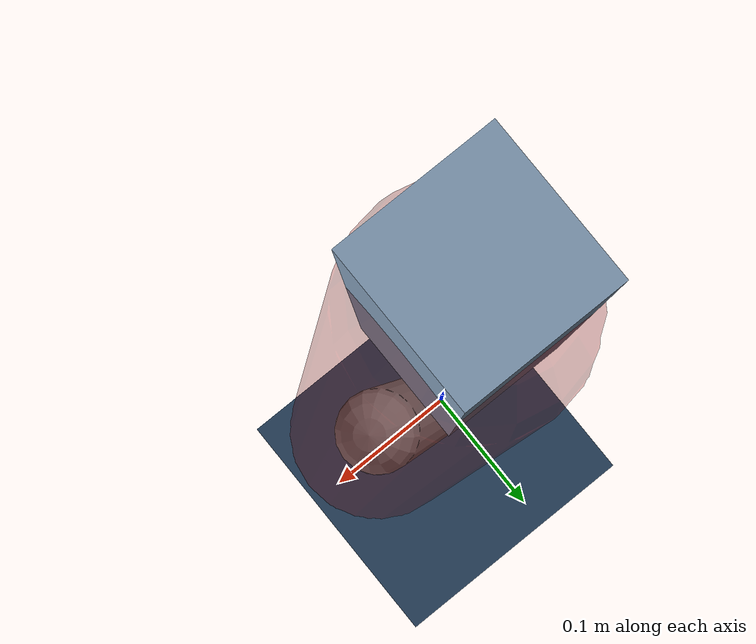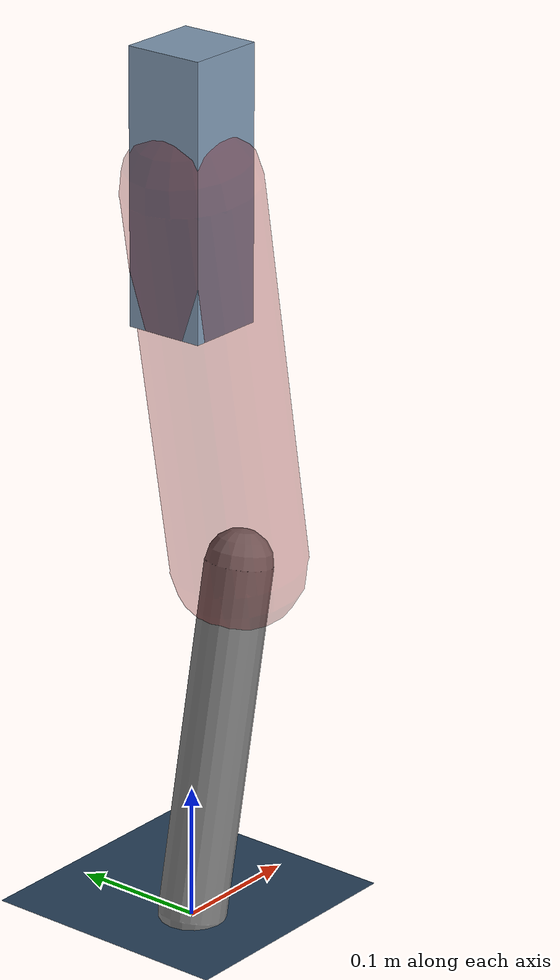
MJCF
<mujoco model="Hopper2D">
	<compiler inertiafromgeom="true" angle="radian" />
	<option timestep="0.001" integrator="implicit" cone="elliptic" solver="Newton" tolerance="1e-10" />

	<default>
		<geom contype="1" conaffinity="1" condim="3" friction="2 0.005 0.0001" solref="0.005 1" />
		<joint limited="true" damping="0.1" />
	</default>

	<asset>
		<texture name="skybox" type="skybox" builtin="gradient" rgb1=".4 .6 .8" rgb2="0 0 0" width="800" height="800" />
		<texture name="grid" type="2d" builtin="checker" rgb1=".1 .2 .3" rgb2=".2 .3 .4" width="300" height="300" mark="edge" markrgb=".2 .3 .4" />
		<material name="ground" texture="grid" texrepeat="1 1" texuniform="true" reflectance="0.1" />
		<material name="leg" rgba="0.5 0.6 0.7 1" />
	</asset>

	<worldbody>

		<geom name="floor" type="plane" size="5 5 0.25" material="ground" />

		<light directional="false" diffuse="0.8 0.8 0.8" specular="0.3 0.3 0.3" pos="0 0 2" dir="0 0 -1" />
		<light mode="targetbodycom" target="base" directional="false" diffuse="0.8 0.8 0.8" specular="0.3 0.3 0.3" pos="0 0 2" dir="0 0 -1" />

		<camera name="fixed" pos="0 -2 1" xyaxes="1 0 0 0 0 1" />
		<camera name="tracking" mode="trackcom" pos="0 -3 1" />

		<body name="root" pos="0 0 0.5537709294517492">
			<joint name="slide_x" type="slide" axis="1 0 0" range="-100 100" />
			<joint name="slide_z" type="slide" axis="0 0 1" range="0 10" />

			<body name="base" pos="0 0 0">
				<geom name="torso" type="box" size="0.03 0.03 0.1" mass="3.2560000000000002" material="leg" />

				<body name="link1" pos="0 0 0" euler="0 1.3937970501122723 0">
					<joint type="hinge" axis="0 -1 0" pos="0 0 0" name="hinge1" limited="true" range="-3.14 3.14" stiffness="0" damping="0.1" />
					<geom name="thigh" type="capsule" fromto="0 0 0 0.2995793481650447 0 0" size="0.05" rgba="0.5 0 0 0.3" mass="0.9875642400456208" />

					<body name="link2" pos="0.2995793481650447 0 0" euler="0 0.3780117465881459 0">
						<joint type="hinge" axis="0 -1 0" pos="0 0 0" name="hinge2" limited="true" range="-3.14 3.14" stiffness="0" damping="0.1" />
						<geom name="shank" type="capsule" fromto="0 0 0 0.2641915812867045 0 0" size="0.025" mass="0.4541724231580341" />

					</body>
				</body>
			</body>
		</body>
	</worldbody>

	<actuator>
		<motor name="torque1" joint="hinge1" ctrlrange="-92.39695325201136 92.39695325201136" ctrllimited="true" gear="1" />
		<motor name="torque2" joint="hinge2" ctrlrange="-119.47481538019049 119.47481538019049" ctrllimited="true" gear="1" />
	</actuator>
</mujoco>
